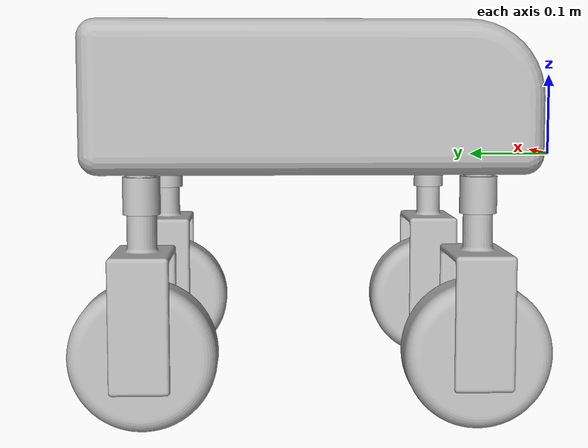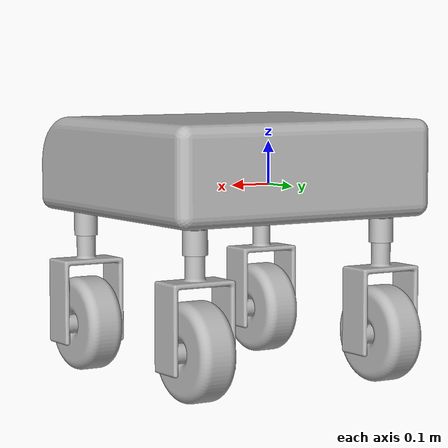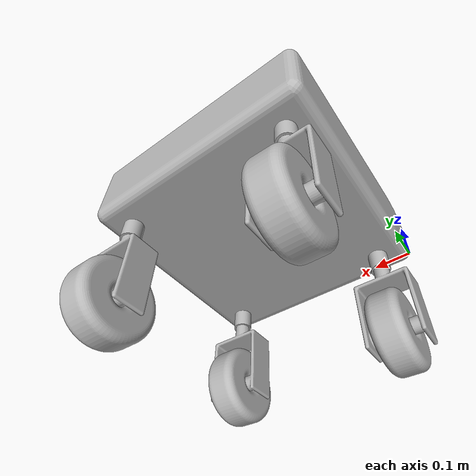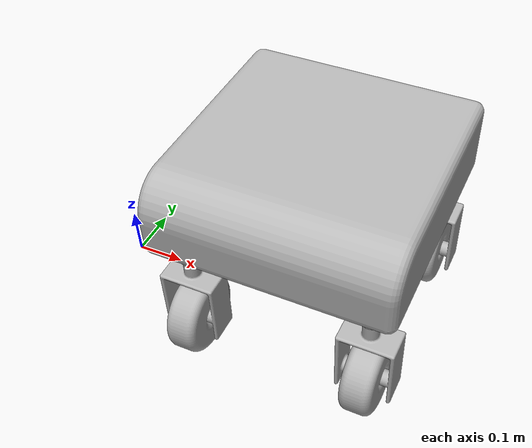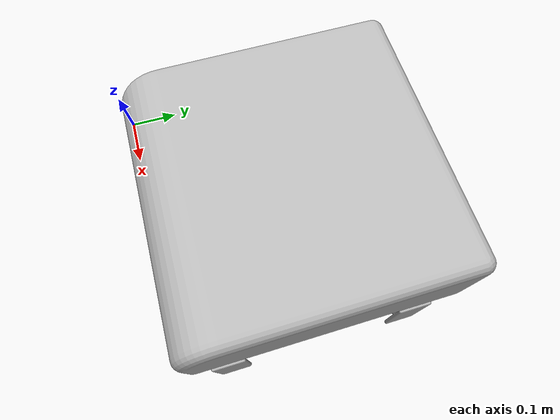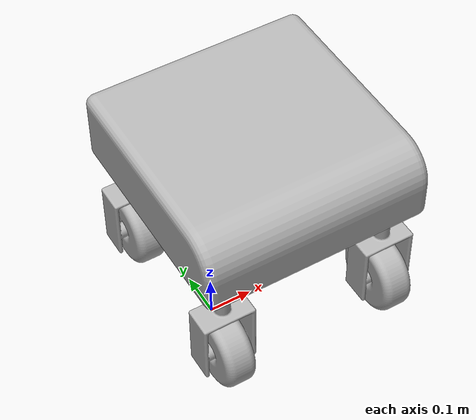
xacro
<?xml version="1.0" ?>
<robot name="Swirl" xmlns:xacro="http://www.ros.org/wiki/xacro">

<xacro:include filename="$(find swirlbot)/urdf/materials.xacro" />
<xacro:include filename="$(find swirlbot)/urdf/Swirl.trans" />
<xacro:include filename="$(find swirlbot)/urdf/Swirl.gazebo" />
<link name="base_link">
  <inertial>
    <origin rpy="0 0 0" xyz="0.37573737812491176 0.27911638181202186 -0.07612839675842477"/>
    <mass value="550.2571453206781"/>
    <inertia ixx="17.659217" ixy="0.0" ixz="0.0" iyy="18.114561" iyz="-0.199552" izz="32.212688"/>
  </inertial>
  <visual>
    <origin rpy="0 0 0" xyz="0 0 0"/>
    <geometry>
      <mesh filename="package://swirlbot/meshes/base_link.stl" scale="0.001 0.001 0.001"/>
    </geometry>
    <material name="silver"/>
  </visual>
  <collision>
    <origin rpy="0 0 0" xyz="0 0 0"/>
    <geometry>
      <mesh filename="package://swirlbot/meshes/base_link.stl" scale="0.001 0.001 0.001"/>
    </geometry>
  </collision>
</link>

<link name="wheel_shaft_1">
  <inertial>
    <origin rpy="0 0 0" xyz="3.781249104939377e-07 -4.584373947957854e-07 -0.12677095893115056"/>
    <mass value="4.614159563386193"/>
    <inertia ixx="0.021752" ixy="0.0" ixz="0.0" iyy="0.03174" iyz="0.0" izz="0.013289"/>
  </inertial>
  <visual>
    <origin rpy="0 0 0" xyz="-0.150737 -0.049393 0.229787"/>
    <geometry>
      <mesh filename="package://swirlbot/meshes/wheel_shaft_1.stl" scale="0.001 0.001 0.001"/>
    </geometry>
    <material name="silver"/>
  </visual>
  <collision>
    <origin rpy="0 0 0" xyz="-0.150737 -0.049393 0.229787"/>
    <geometry>
      <mesh filename="package://swirlbot/meshes/wheel_shaft_1.stl" scale="0.001 0.001 0.001"/>
    </geometry>
  </collision>
</link>

<link name="wheel_shaft_3">
  <inertial>
    <origin rpy="0 0 0" xyz="3.7812491160416073e-07 -4.5843739501783e-07 -0.12677095893115078"/>
    <mass value="4.614159563386193"/>
    <inertia ixx="0.021752" ixy="0.0" ixz="-0.0" iyy="0.03174" iyz="0.0" izz="0.013289"/>
  </inertial>
  <visual>
    <origin rpy="0 0 0" xyz="-0.600737 -0.049393 0.229787"/>
    <geometry>
      <mesh filename="package://swirlbot/meshes/wheel_shaft_3.stl" scale="0.001 0.001 0.001"/>
    </geometry>
    <material name="silver"/>
  </visual>
  <collision>
    <origin rpy="0 0 0" xyz="-0.600737 -0.049393 0.229787"/>
    <geometry>
      <mesh filename="package://swirlbot/meshes/wheel_shaft_3.stl" scale="0.001 0.001 0.001"/>
    </geometry>
  </collision>
</link>

<link name="wheel_shaft_4">
  <inertial>
    <origin rpy="0 0 0" xyz="3.7812491160416073e-07 -4.584373943239406e-07 -0.12677095893115006"/>
    <mass value="4.614159563386193"/>
    <inertia ixx="0.021752" ixy="0.0" ixz="0.0" iyy="0.03174" iyz="0.0" izz="0.013289"/>
  </inertial>
  <visual>
    <origin rpy="0 0 0" xyz="-0.600737 -0.499393 0.229787"/>
    <geometry>
      <mesh filename="package://swirlbot/meshes/wheel_shaft_4.stl" scale="0.001 0.001 0.001"/>
    </geometry>
    <material name="silver"/>
  </visual>
  <collision>
    <origin rpy="0 0 0" xyz="-0.600737 -0.499393 0.229787"/>
    <geometry>
      <mesh filename="package://swirlbot/meshes/wheel_shaft_4.stl" scale="0.001 0.001 0.001"/>
    </geometry>
  </collision>
</link>

<link name="wheel_shaft_2">
  <inertial>
    <origin rpy="0 0 0" xyz="3.7812491091027134e-07 -4.5843739437945175e-07 -0.12677095893115034"/>
    <mass value="4.614159563386193"/>
    <inertia ixx="0.021752" ixy="0.0" ixz="0.0" iyy="0.03174" iyz="0.0" izz="0.013289"/>
  </inertial>
  <visual>
    <origin rpy="0 0 0" xyz="-0.150737 -0.499393 0.229787"/>
    <geometry>
      <mesh filename="package://swirlbot/meshes/wheel_shaft_2.stl" scale="0.001 0.001 0.001"/>
    </geometry>
    <material name="silver"/>
  </visual>
  <collision>
    <origin rpy="0 0 0" xyz="-0.150737 -0.499393 0.229787"/>
    <geometry>
      <mesh filename="package://swirlbot/meshes/wheel_shaft_2.stl" scale="0.001 0.001 0.001"/>
    </geometry>
  </collision>
</link>

<link name="wheel_2">
  <inertial>
    <origin rpy="0 0 0" xyz="-0.27197762187508917 -0.45939245843739407 0.43138161980139256"/>
    <mass value="17.923892280802068"/>
    <inertia ixx="0.090938" ixy="-0.0" ixz="0.0" iyy="0.054273" iyz="0.0" izz="0.054273"/>
  </inertial>
  <visual>
    <origin rpy="0 0 0" xyz="-0.422715 -0.958785 0.851169"/>
    <geometry>
      <mesh filename="package://swirlbot/meshes/wheel_2.stl" scale="0.001 0.001 0.001"/>
    </geometry>
    <material name="silver"/>
  </visual>
  <collision>
    <origin rpy="0 0 0" xyz="-0.422715 -0.958785 0.851169"/>
    <geometry>
      <mesh filename="package://swirlbot/meshes/wheel_2.stl" scale="0.001 0.001 0.001"/>
    </geometry>
  </collision>
</link>

<link name="wheel_1">
  <inertial>
    <origin rpy="0 0 0" xyz="-0.2719776218750898 -0.009392458437394953 0.4313816198013922"/>
    <mass value="17.923892280802068"/>
    <inertia ixx="0.090938" ixy="0.0" ixz="0.0" iyy="0.054273" iyz="0.0" izz="0.054273"/>
  </inertial>
  <visual>
    <origin rpy="0 0 0" xyz="-0.422715 -0.058785 0.851169"/>
    <geometry>
      <mesh filename="package://swirlbot/meshes/wheel_1.stl" scale="0.001 0.001 0.001"/>
    </geometry>
    <material name="silver"/>
  </visual>
  <collision>
    <origin rpy="0 0 0" xyz="-0.422715 -0.058785 0.851169"/>
    <geometry>
      <mesh filename="package://swirlbot/meshes/wheel_1.stl" scale="0.001 0.001 0.001"/>
    </geometry>
  </collision>
</link>

<link name="wheel_3">
  <inertial>
    <origin rpy="0 0 0" xyz="-0.6119776218750894 -0.009392458437395043 0.43138161980139217"/>
    <mass value="17.923892280802068"/>
    <inertia ixx="0.090938" ixy="0.0" ixz="0.0" iyy="0.054273" iyz="0.0" izz="0.054273"/>
  </inertial>
  <visual>
    <origin rpy="0 0 0" xyz="-1.212715 -0.058785 0.851169"/>
    <geometry>
      <mesh filename="package://swirlbot/meshes/wheel_3.stl" scale="0.001 0.001 0.001"/>
    </geometry>
    <material name="silver"/>
  </visual>
  <collision>
    <origin rpy="0 0 0" xyz="-1.212715 -0.058785 0.851169"/>
    <geometry>
      <mesh filename="package://swirlbot/meshes/wheel_3.stl" scale="0.001 0.001 0.001"/>
    </geometry>
  </collision>
</link>

<link name="wheel_4">
  <inertial>
    <origin rpy="0 0 0" xyz="-0.6119776218750892 -0.4593924584373942 0.431381619801393"/>
    <mass value="17.923892280802068"/>
    <inertia ixx="0.090938" ixy="0.0" ixz="-0.0" iyy="0.054273" iyz="0.0" izz="0.054273"/>
  </inertial>
  <visual>
    <origin rpy="0 0 0" xyz="-1.212715 -0.958785 0.851169"/>
    <geometry>
      <mesh filename="package://swirlbot/meshes/wheel_4.stl" scale="0.001 0.001 0.001"/>
    </geometry>
    <material name="silver"/>
  </visual>
  <collision>
    <origin rpy="0 0 0" xyz="-1.212715 -0.958785 0.851169"/>
    <geometry>
      <mesh filename="package://swirlbot/meshes/wheel_4.stl" scale="0.001 0.001 0.001"/>
    </geometry>
  </collision>
</link>

<link name="wheel_link_1">
  <inertial>
    <origin rpy="0 0 0" xyz="3.7812491060496e-07 -4.5843739473333533e-07 -0.025000380198607564"/>
    <mass value="0.27744190122014867"/>
    <inertia ixx="0.000129" ixy="-0.0" ixz="0.0" iyy="0.000129" iyz="0.0" izz="0.000142"/>
  </inertial>
  <visual>
    <origin rpy="0 0 0" xyz="-0.150737 -0.049393 0.179787"/>
    <geometry>
      <mesh filename="package://swirlbot/meshes/wheel_link_1.stl" scale="0.001 0.001 0.001"/>
    </geometry>
    <material name="silver"/>
  </visual>
  <collision>
    <origin rpy="0 0 0" xyz="-0.150737 -0.049393 0.179787"/>
    <geometry>
      <mesh filename="package://swirlbot/meshes/wheel_link_1.stl" scale="0.001 0.001 0.001"/>
    </geometry>
  </collision>
</link>

<link name="wheel_link_3">
  <inertial>
    <origin rpy="0 0 0" xyz="3.781249112710938e-07 -4.5843739505252445e-07 -0.02500038019860798"/>
    <mass value="0.27744190122014867"/>
    <inertia ixx="0.000129" ixy="0.0" ixz="-0.0" iyy="0.000129" iyz="0.0" izz="0.000142"/>
  </inertial>
  <visual>
    <origin rpy="0 0 0" xyz="-0.600737 -0.049393 0.179787"/>
    <geometry>
      <mesh filename="package://swirlbot/meshes/wheel_link_3.stl" scale="0.001 0.001 0.001"/>
    </geometry>
    <material name="silver"/>
  </visual>
  <collision>
    <origin rpy="0 0 0" xyz="-0.600737 -0.049393 0.179787"/>
    <geometry>
      <mesh filename="package://swirlbot/meshes/wheel_link_3.stl" scale="0.001 0.001 0.001"/>
    </geometry>
  </collision>
</link>

<link name="wheel_link_4">
  <inertial>
    <origin rpy="0 0 0" xyz="3.781249113821161e-07 -4.584373943239406e-07 -0.025000380198607813"/>
    <mass value="0.27744190122014867"/>
    <inertia ixx="0.000129" ixy="0.0" ixz="0.0" iyy="0.000129" iyz="0.0" izz="0.000142"/>
  </inertial>
  <visual>
    <origin rpy="0 0 0" xyz="-0.600737 -0.499393 0.179787"/>
    <geometry>
      <mesh filename="package://swirlbot/meshes/wheel_link_4.stl" scale="0.001 0.001 0.001"/>
    </geometry>
    <material name="silver"/>
  </visual>
  <collision>
    <origin rpy="0 0 0" xyz="-0.600737 -0.499393 0.179787"/>
    <geometry>
      <mesh filename="package://swirlbot/meshes/wheel_link_4.stl" scale="0.001 0.001 0.001"/>
    </geometry>
  </collision>
</link>

<link name="wheel_link_2">
  <inertial>
    <origin rpy="0 0 0" xyz="3.781249110490492e-07 -4.5843739393536254e-07 -0.025000380198607425"/>
    <mass value="0.27744190122014867"/>
    <inertia ixx="0.000129" ixy="0.0" ixz="0.0" iyy="0.000129" iyz="0.0" izz="0.000142"/>
  </inertial>
  <visual>
    <origin rpy="0 0 0" xyz="-0.150737 -0.499393 0.179787"/>
    <geometry>
      <mesh filename="package://swirlbot/meshes/wheel_link_2.stl" scale="0.001 0.001 0.001"/>
    </geometry>
    <material name="silver"/>
  </visual>
  <collision>
    <origin rpy="0 0 0" xyz="-0.150737 -0.499393 0.179787"/>
    <geometry>
      <mesh filename="package://swirlbot/meshes/wheel_link_2.stl" scale="0.001 0.001 0.001"/>
    </geometry>
  </collision>
</link>

<joint name="RF_swirl" type="continuous">
  <origin rpy="0 0 0" xyz="0.0 0.0 -0.05"/>
  <parent link="wheel_link_1"/>
  <child link="wheel_shaft_1"/>
  <axis xyz="-0.0 -0.0 -1.0"/>
</joint>

<joint name="LF_swirl" type="continuous">
  <origin rpy="0 0 0" xyz="0.0 0.0 -0.05"/>
  <parent link="wheel_link_3"/>
  <child link="wheel_shaft_3"/>
  <axis xyz="-0.0 -0.0 -1.0"/>
</joint>

<joint name="LB_swirl" type="continuous">
  <origin rpy="0 0 0" xyz="0.0 0.0 -0.05"/>
  <parent link="wheel_link_4"/>
  <child link="wheel_shaft_4"/>
  <axis xyz="-0.0 -0.0 -1.0"/>
</joint>

<joint name="RB_swirl" type="continuous">
  <origin rpy="0 0 0" xyz="0.0 0.0 -0.05"/>
  <parent link="wheel_link_2"/>
  <child link="wheel_shaft_2"/>
  <axis xyz="-0.0 -0.0 -1.0"/>
</joint>

<joint name="RB_wheel" type="continuous">
  <origin rpy="0 0 0" xyz="0.271978 0.459392 -0.621382"/>
  <parent link="wheel_shaft_2"/>
  <child link="wheel_2"/>
  <axis xyz="1.0 -0.0 -0.0"/>
</joint>

<joint name="RF_wheel" type="continuous">
  <origin rpy="0 0 0" xyz="0.271978 0.009392 -0.621382"/>
  <parent link="wheel_shaft_1"/>
  <child link="wheel_1"/>
  <axis xyz="1.0 -0.0 -0.0"/>
</joint>

<joint name="LF_wheel" type="continuous">
  <origin rpy="0 0 0" xyz="0.611978 0.009392 -0.621382"/>
  <parent link="wheel_shaft_3"/>
  <child link="wheel_3"/>
  <axis xyz="-1.0 0.0 0.0"/>
</joint>

<joint name="LB_wheel" type="continuous">
  <origin rpy="0 0 0" xyz="0.611978 0.459392 -0.621382"/>
  <parent link="wheel_shaft_4"/>
  <child link="wheel_4"/>
  <axis xyz="-1.0 0.0 0.0"/>
</joint>

<joint name="Rigid34" type="fixed">
  <origin rpy="0 0 0" xyz="0.150737 0.049393 -0.179787"/>
  <parent link="base_link"/>
  <child link="wheel_link_1"/>
</joint>

<joint name="Rigid35" type="fixed">
  <origin rpy="0 0 0" xyz="0.600737 0.049393 -0.179787"/>
  <parent link="base_link"/>
  <child link="wheel_link_3"/>
</joint>

<joint name="Rigid36" type="fixed">
  <origin rpy="0 0 0" xyz="0.600737 0.499393 -0.179787"/>
  <parent link="base_link"/>
  <child link="wheel_link_4"/>
</joint>

<joint name="Rigid37" type="fixed">
  <origin rpy="0 0 0" xyz="0.150737 0.499393 -0.179787"/>
  <parent link="base_link"/>
  <child link="wheel_link_2"/>
</joint>

</robot>

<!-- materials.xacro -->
<robot name="Swirl" xmlns:xacro="http://www.ros.org/wiki/xacro" >

<material name="silver">
  <color rgba="0.700 0.700 0.700 1.000"/>
</material>

</robot>

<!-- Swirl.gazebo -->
<robot name="Swirl" xmlns:xacro="http://www.ros.org/wiki/xacro" >

<xacro:property name="body_color" value="Gazebo/Silver" />

<gazebo>
  <plugin filename="libgazebo_ros_control.so" name="control"/>
</gazebo>
<gazebo reference="base_link">
  <material>${body_color}</material>
  <mu1>0.2</mu1>
  <mu2>0.2</mu2>
  <selfCollide>true</selfCollide>
  <gravity>true</gravity>
</gazebo>

<gazebo reference="wheel_shaft_1">
  <material>${body_color}</material>
  <mu1>0.2</mu1>
  <mu2>0.2</mu2>
  <selfCollide>true</selfCollide>
</gazebo>

<gazebo reference="wheel_shaft_3">
  <material>${body_color}</material>
  <mu1>0.2</mu1>
  <mu2>0.2</mu2>
  <selfCollide>true</selfCollide>
</gazebo>

<gazebo reference="wheel_shaft_4">
  <material>${body_color}</material>
  <mu1>0.2</mu1>
  <mu2>0.2</mu2>
  <selfCollide>true</selfCollide>
</gazebo>

<gazebo reference="wheel_shaft_2">
  <material>${body_color}</material>
  <mu1>0.2</mu1>
  <mu2>0.2</mu2>
  <selfCollide>true</selfCollide>
</gazebo>

<gazebo reference="wheel_2">
  <material>${body_color}</material>
  <mu1>0.2</mu1>
  <mu2>0.2</mu2>
  <selfCollide>true</selfCollide>
</gazebo>

<gazebo reference="wheel_1">
  <material>${body_color}</material>
  <mu1>0.2</mu1>
  <mu2>0.2</mu2>
  <selfCollide>true</selfCollide>
</gazebo>

<gazebo reference="wheel_3">
  <material>${body_color}</material>
  <mu1>0.2</mu1>
  <mu2>0.2</mu2>
  <selfCollide>true</selfCollide>
</gazebo>

<gazebo reference="wheel_4">
  <material>${body_color}</material>
  <mu1>0.2</mu1>
  <mu2>0.2</mu2>
  <selfCollide>true</selfCollide>
</gazebo>

<gazebo reference="wheel_link_1">
  <material>${body_color}</material>
  <mu1>0.2</mu1>
  <mu2>0.2</mu2>
  <selfCollide>true</selfCollide>
</gazebo>

<gazebo reference="wheel_link_3">
  <material>${body_color}</material>
  <mu1>0.2</mu1>
  <mu2>0.2</mu2>
  <selfCollide>true</selfCollide>
</gazebo>

<gazebo reference="wheel_link_4">
  <material>${body_color}</material>
  <mu1>0.2</mu1>
  <mu2>0.2</mu2>
  <selfCollide>true</selfCollide>
</gazebo>

<gazebo reference="wheel_link_2">
  <material>${body_color}</material>
  <mu1>0.2</mu1>
  <mu2>0.2</mu2>
  <selfCollide>true</selfCollide>
</gazebo>

</robot>
